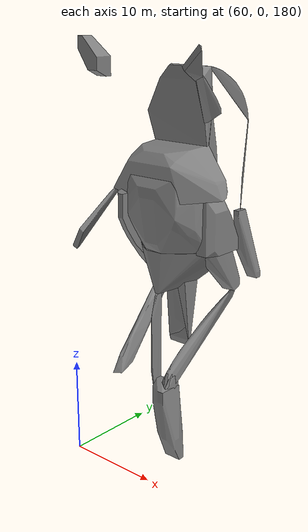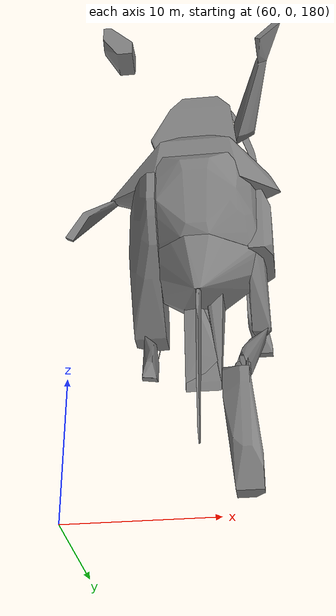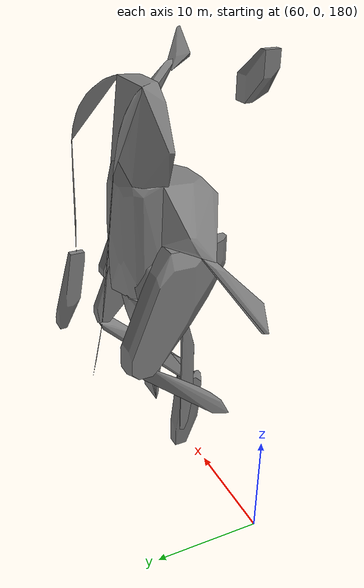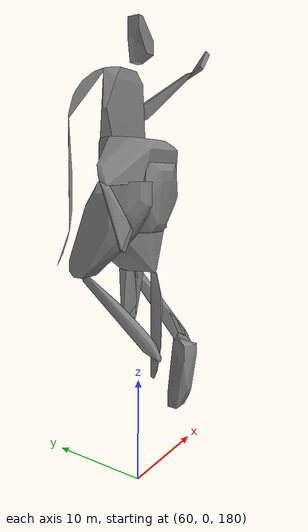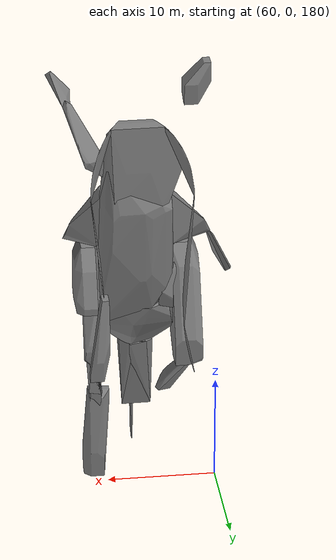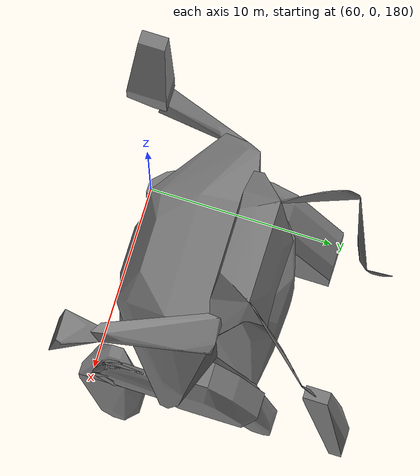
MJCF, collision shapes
<mujoco model="cricket">
  <default>
    <default class="visual">
      <geom group="2" type="mesh" contype="0" conaffinity="0"/>
    </default>
    <default class="collision">
      <geom group="3" type="mesh"/>
    </default>
  </default>
  <asset>
    <mesh file="cricket.obj"/>
    <mesh file="cricket_collision_0.obj"/>
    <mesh file="cricket_collision_1.obj"/>
    <mesh file="cricket_collision_2.obj"/>
    <mesh file="cricket_collision_3.obj"/>
    <mesh file="cricket_collision_4.obj"/>
    <mesh file="cricket_collision_5.obj"/>
    <mesh file="cricket_collision_6.obj"/>
    <mesh file="cricket_collision_7.obj"/>
    <mesh file="cricket_collision_8.obj"/>
    <mesh file="cricket_collision_9.obj"/>
    <mesh file="cricket_collision_10.obj"/>
    <mesh file="cricket_collision_11.obj"/>
    <mesh file="cricket_collision_12.obj"/>
    <mesh file="cricket_collision_13.obj"/>
    <mesh file="cricket_collision_14.obj"/>
    <mesh file="cricket_collision_15.obj"/>
    <mesh file="cricket_collision_16.obj"/>
    <mesh file="cricket_collision_17.obj"/>
    <mesh file="cricket_collision_18.obj"/>
    <mesh file="cricket_collision_19.obj"/>
    <mesh file="cricket_collision_20.obj"/>
    <mesh file="cricket_collision_21.obj"/>
    <mesh file="cricket_collision_22.obj"/>
    <mesh file="cricket_collision_23.obj"/>
    <mesh file="cricket_collision_24.obj"/>
    <mesh file="cricket_collision_25.obj"/>
    <mesh file="cricket_collision_26.obj"/>
    <mesh file="cricket_collision_27.obj"/>
    <mesh file="cricket_collision_28.obj"/>
    <mesh file="cricket_collision_29.obj"/>
    <mesh file="cricket_collision_30.obj"/>
    <mesh file="cricket_collision_31.obj"/>
  </asset>
  <worldbody>
    <body name="cricket">
      <geom mesh="cricket" class="visual"/>
      <geom mesh="cricket_collision_0" class="collision"/>
      <geom mesh="cricket_collision_1" class="collision"/>
      <geom mesh="cricket_collision_2" class="collision"/>
      <geom mesh="cricket_collision_3" class="collision"/>
      <geom mesh="cricket_collision_4" class="collision"/>
      <geom mesh="cricket_collision_5" class="collision"/>
      <geom mesh="cricket_collision_6" class="collision"/>
      <geom mesh="cricket_collision_7" class="collision"/>
      <geom mesh="cricket_collision_8" class="collision"/>
      <geom mesh="cricket_collision_9" class="collision"/>
      <geom mesh="cricket_collision_10" class="collision"/>
      <geom mesh="cricket_collision_11" class="collision"/>
      <geom mesh="cricket_collision_12" class="collision"/>
      <geom mesh="cricket_collision_13" class="collision"/>
      <geom mesh="cricket_collision_14" class="collision"/>
      <geom mesh="cricket_collision_15" class="collision"/>
      <geom mesh="cricket_collision_16" class="collision"/>
      <geom mesh="cricket_collision_17" class="collision"/>
      <geom mesh="cricket_collision_18" class="collision"/>
      <geom mesh="cricket_collision_19" class="collision"/>
      <geom mesh="cricket_collision_20" class="collision"/>
      <geom mesh="cricket_collision_21" class="collision"/>
      <geom mesh="cricket_collision_22" class="collision"/>
      <geom mesh="cricket_collision_23" class="collision"/>
      <geom mesh="cricket_collision_24" class="collision"/>
      <geom mesh="cricket_collision_25" class="collision"/>
      <geom mesh="cricket_collision_26" class="collision"/>
      <geom mesh="cricket_collision_27" class="collision"/>
      <geom mesh="cricket_collision_28" class="collision"/>
      <geom mesh="cricket_collision_29" class="collision"/>
      <geom mesh="cricket_collision_30" class="collision"/>
      <geom mesh="cricket_collision_31" class="collision"/>
    </body>
  </worldbody>
</mujoco>
